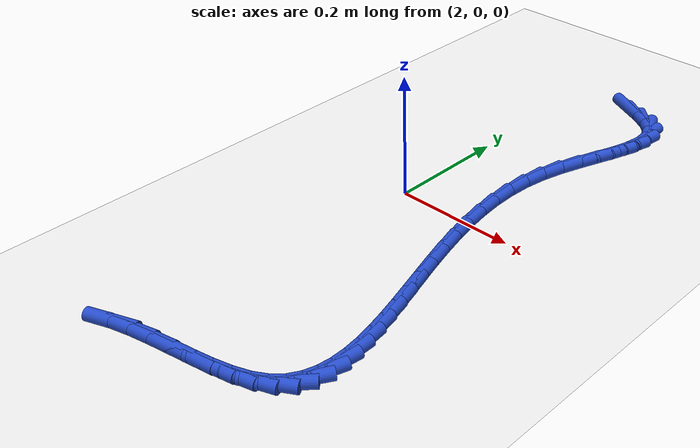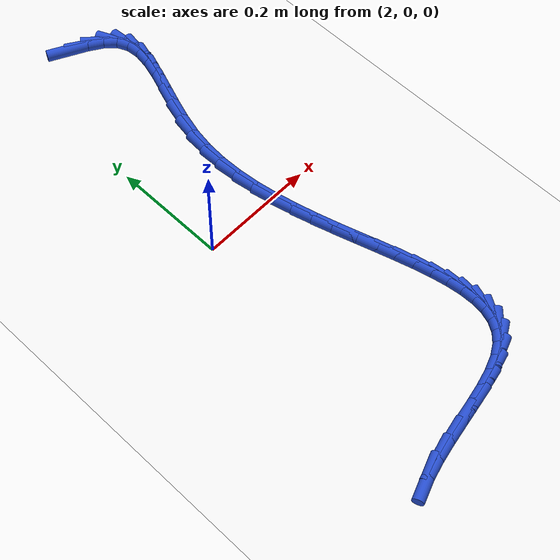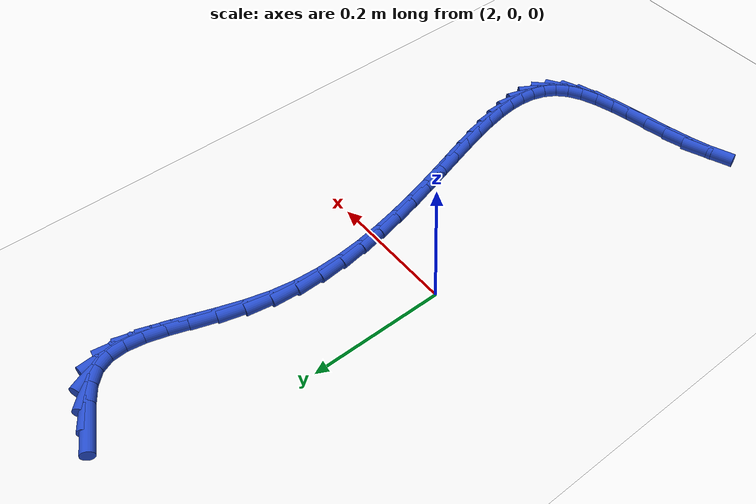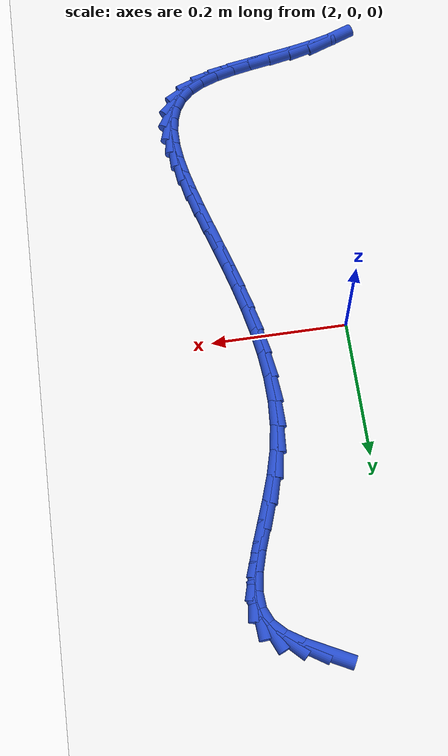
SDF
<sdf version="1.6">
 <world name="default">
  <model name="ground_plane">
   <static>1</static>
   <link name="link">
    <collision name="collision">
     <geometry><plane><normal>0 0 1</normal><size>100 100</size></plane></geometry>
     <surface><friction><ode><mu>100</mu><mu2>50</mu2></ode></friction></surface>
    </collision>
    <visual name="visual">
     <cast_shadows>0</cast_shadows>
     <geometry><plane><normal>0 0 1</normal><size>100 100</size></plane></geometry>
     <material>
      <script><uri>file://media/materials/scripts/gazebo.material</uri><name>Gazebo/WhiteGlow</name></script>
     </material>
    </visual>
   </link>
  </model>
  <model name="line">
   <link name="link_102">
    <pose>2.106183555907834 0.4582070805316041 0.01 0 1.57 -0.4669530309666636</pose>
    <collision name="collision">
     <geometry><cylinder><radius>0.01</radius><length>0.08</length></cylinder></geometry>
    </collision>
    <visual name="visual">
     <material>
      <script><name>Gazebo/Blue</name><uri>file://media/materials/scripts/gazebo.material</uri></script>
     </material>
     <geometry><cylinder><radius>0.01</radius><length>0.08</length></cylinder></geometry>
    </visual>
   </link>
   <link name="link_103">
    <pose>2.1343137559440404 0.4440255599535866 0.01 0 1.57 -0.5611002255166408</pose>
    <collision name="collision">
     <geometry><cylinder><radius>0.01</radius><length>0.08</length></cylinder></geometry>
    </collision>
    <visual name="visual">
     <material>
      <script><name>Gazebo/Blue</name><uri>file://media/materials/scripts/gazebo.material</uri></script>
     </material>
     <geometry><cylinder><radius>0.01</radius><length>0.08</length></cylinder></geometry>
    </visual>
   </link>
   <link name="link_104">
    <pose>2.1584522583065087 0.4288549148126478 0.01 0 1.57 -0.7783038114898712</pose>
    <collision name="collision">
     <geometry><cylinder><radius>0.01</radius><length>0.08</length></cylinder></geometry>
    </collision>
    <visual name="visual">
     <material>
      <script><name>Gazebo/Blue</name><uri>file://media/materials/scripts/gazebo.material</uri></script>
     </material>
     <geometry><cylinder><radius>0.01</radius><length>0.08</length></cylinder></geometry>
    </visual>
   </link>
   <link name="link_105">
    <pose>2.1761115406380784 0.411444433896928 0.01 0 1.57 -1.147872515482033</pose>
    <collision name="collision">
     <geometry><cylinder><radius>0.01</radius><length>0.08</length></cylinder></geometry>
    </collision>
    <visual name="visual">
     <material>
      <script><name>Gazebo/Blue</name><uri>file://media/materials/scripts/gazebo.material</uri></script>
     </material>
     <geometry><cylinder><radius>0.01</radius><length>0.08</length></cylinder></geometry>
    </visual>
   </link>
   <link name="link_106">
    <pose>2.185411272795665 0.3907822211989793 0.01 0 1.57 -1.4960700774505493</pose>
    <collision name="collision">
     <geometry><cylinder><radius>0.01</radius><length>0.08</length></cylinder></geometry>
    </collision>
    <visual name="visual">
     <material>
      <script><name>Gazebo/Blue</name><uri>file://media/materials/scripts/gazebo.material</uri></script>
     </material>
     <geometry><cylinder><radius>0.01</radius><length>0.08</length></cylinder></geometry>
    </visual>
   </link>
   <link name="link_107">
    <pose>2.187197094633995 0.36692853392273284 0.01 0 1.57 1.417688361436027</pose>
    <collision name="collision">
     <geometry><cylinder><radius>0.01</radius><length>0.08</length></cylinder></geometry>
    </collision>
    <visual name="visual">
     <material>
      <script><name>Gazebo/Blue</name><uri>file://media/materials/scripts/gazebo.material</uri></script>
     </material>
     <geometry><cylinder><radius>0.01</radius><length>0.08</length></cylinder></geometry>
    </visual>
   </link>
   <link name="link_108">
    <pose>2.1830793113484552 0.3402443803446834 0.01 0 1.57 1.2899157537128405</pose>
    <collision name="collision">
     <geometry><cylinder><radius>0.01</radius><length>0.08</length></cylinder></geometry>
    </collision>
    <visual name="visual">
     <material>
      <script><name>Gazebo/Blue</name><uri>file://media/materials/scripts/gazebo.material</uri></script>
     </material>
     <geometry><cylinder><radius>0.01</radius><length>0.08</length></cylinder></geometry>
    </visual>
   </link>
   <link name="link_109">
    <pose>2.174668266948988 0.31109078400750817 0.01 0 1.57 1.229789297097263</pose>
    <collision name="collision">
     <geometry><cylinder><radius>0.01</radius><length>0.08</length></cylinder></geometry>
    </collision>
    <visual name="visual">
     <material>
      <script><name>Gazebo/Blue</name><uri>file://media/materials/scripts/gazebo.material</uri></script>
     </material>
     <geometry><cylinder><radius>0.01</radius><length>0.08</length></cylinder></geometry>
    </visual>
   </link>
   <link name="link_110">
    <pose>2.1635743054455356 0.27982876845388327 0.01 0 1.57 1.2176679737667722</pose>
    <collision name="collision">
     <geometry><cylinder><radius>0.01</radius><length>0.08</length></cylinder></geometry>
    </collision>
    <visual name="visual">
     <material>
      <script><name>Gazebo/Blue</name><uri>file://media/materials/scripts/gazebo.material</uri></script>
     </material>
     <geometry><cylinder><radius>0.01</radius><length>0.08</length></cylinder></geometry>
    </visual>
   </link>
   <link name="link_111">
    <pose>2.151407770848044 0.24681935722648532 0.01 0 1.57 1.244773683000911</pose>
    <collision name="collision">
     <geometry><cylinder><radius>0.01</radius><length>0.08</length></cylinder></geometry>
    </collision>
    <visual name="visual">
     <material>
      <script><name>Gazebo/Blue</name><uri>file://media/materials/scripts/gazebo.material</uri></script>
     </material>
     <geometry><cylinder><radius>0.01</radius><length>0.08</length></cylinder></geometry>
    </visual>
   </link>
   <link name="link_112">
    <pose>2.1397790071664544 0.21242357386799027 0.01 0 1.57 1.3092712946984872</pose>
    <collision name="collision">
     <geometry><cylinder><radius>0.01</radius><length>0.08</length></cylinder></geometry>
    </collision>
    <visual name="visual">
     <material>
      <script><name>Gazebo/Blue</name><uri>file://media/materials/scripts/gazebo.material</uri></script>
     </material>
     <geometry><cylinder><radius>0.01</radius><length>0.08</length></cylinder></geometry>
    </visual>
   </link>
   <link name="link_113">
    <pose>2.1302983584107107 0.17700244192107562 0.01 0 1.57 1.4084223096730197</pose>
    <collision name="collision">
     <geometry><cylinder><radius>0.01</radius><length>0.08</length></cylinder></geometry>
    </collision>
    <visual name="visual">
     <material>
      <script><name>Gazebo/Blue</name><uri>file://media/materials/scripts/gazebo.material</uri></script>
     </material>
     <geometry><cylinder><radius>0.01</radius><length>0.08</length></cylinder></geometry>
    </visual>
   </link>
   <link name="link_114">
    <pose>2.1243841550984737 0.1408997747354225 0.01 0 1.57 1.5092782087624113</pose>
    <collision name="collision">
     <geometry><cylinder><radius>0.01</radius><length>0.08</length></cylinder></geometry>
    </collision>
    <visual name="visual">
     <material>
      <script><name>Gazebo/Blue</name><uri>file://media/materials/scripts/gazebo.material</uri></script>
     </material>
     <geometry><cylinder><radius>0.01</radius><length>0.08</length></cylinder></geometry>
    </visual>
   </link>
   <link name="link_115">
    <pose>2.122132277671355 0.10434085429729431 0.01 0 1.57 -1.5450305360038443</pose>
    <collision name="collision">
     <geometry><cylinder><radius>0.01</radius><length>0.08</length></cylinder></geometry>
    </collision>
    <visual name="visual">
     <material>
      <script><name>Gazebo/Blue</name><uri>file://media/materials/scripts/gazebo.material</uri></script>
     </material>
     <geometry><cylinder><radius>0.01</radius><length>0.08</length></cylinder></geometry>
    </visual>
   </link>
   <link name="link_116">
    <pose>2.1230816945594784 0.06750104650068083 0.01 0 1.57 -1.4713103226818578</pose>
    <collision name="collision">
     <geometry><cylinder><radius>0.01</radius><length>0.08</length></cylinder></geometry>
    </collision>
    <visual name="visual">
     <material>
      <script><name>Gazebo/Blue</name><uri>file://media/materials/scripts/gazebo.material</uri></script>
     </material>
     <geometry><cylinder><radius>0.01</radius><length>0.08</length></cylinder></geometry>
    </visual>
   </link>
   <link name="link_117">
    <pose>2.126769429523425 0.030555542938599134 0.01 0 1.57 -1.4104779575911432</pose>
    <collision name="collision">
     <geometry><cylinder><radius>0.01</radius><length>0.08</length></cylinder></geometry>
    </collision>
    <visual name="visual">
     <material>
      <script><name>Gazebo/Blue</name><uri>file://media/materials/scripts/gazebo.material</uri></script>
     </material>
     <geometry><cylinder><radius>0.01</radius><length>0.08</length></cylinder></geometry>
    </visual>
   </link>
   <link name="link_118">
    <pose>2.1327325063237716 -0.00632046479593329 0.01 0 1.57 -1.3616385291779645</pose>
    <collision name="collision">
     <geometry><cylinder><radius>0.01</radius><length>0.08</length></cylinder></geometry>
    </collision>
    <visual name="visual">
     <material>
      <script><name>Gazebo/Blue</name><uri>file://media/materials/scripts/gazebo.material</uri></script>
     </material>
     <geometry><cylinder><radius>0.01</radius><length>0.08</length></cylinder></geometry>
    </visual>
   </link>
   <link name="link_119">
    <pose>2.140507948721097 -0.04295178510989953 0.01 0 1.57 -1.323947921071971</pose>
    <collision name="collision">
     <geometry><cylinder><radius>0.01</radius><length>0.08</length></cylinder></geometry>
    </collision>
    <visual name="visual">
     <material>
      <script><name>Gazebo/Blue</name><uri>file://media/materials/scripts/gazebo.material</uri></script>
     </material>
     <geometry><cylinder><radius>0.01</radius><length>0.08</length></cylinder></geometry>
    </visual>
   </link>
   <link name="link_120">
    <pose>2.1496327804759794 -0.07916322641028108 0.01 0 1.57 -1.2967813366317928</pose>
    <collision name="collision">
     <geometry><cylinder><radius>0.01</radius><length>0.08</length></cylinder></geometry>
    </collision>
    <visual name="visual">
     <material>
      <script><name>Gazebo/Blue</name><uri>file://media/materials/scripts/gazebo.material</uri></script>
     </material>
     <geometry><cylinder><radius>0.01</radius><length>0.08</length></cylinder></geometry>
    </visual>
   </link>
   <link name="link_121">
    <pose>2.159644025348998 -0.11477959710406098 0.01 0 1.57 -1.27984381228828</pose>
    <collision name="collision">
     <geometry><cylinder><radius>0.01</radius><length>0.08</length></cylinder></geometry>
    </collision>
    <visual name="visual">
     <material>
      <script><name>Gazebo/Blue</name><uri>file://media/materials/scripts/gazebo.material</uri></script>
     </material>
     <geometry><cylinder><radius>0.01</radius><length>0.08</length></cylinder></geometry>
    </visual>
   </link>
   <link name="link_122">
    <pose>2.1700787071007293 -0.14962570559822172 0.01 0 1.57 -1.2732631387775561</pose>
    <collision name="collision">
     <geometry><cylinder><radius>0.01</radius><length>0.08</length></cylinder></geometry>
    </collision>
    <visual name="visual">
     <material>
      <script><name>Gazebo/Blue</name><uri>file://media/materials/scripts/gazebo.material</uri></script>
     </material>
     <geometry><cylinder><radius>0.01</radius><length>0.08</length></cylinder></geometry>
    </visual>
   </link>
   <link name="link_123">
    <pose>2.1804738494917526 -0.18352636029974578 0.01 0 1.57 -1.2776996006871055</pose>
    <collision name="collision">
     <geometry><cylinder><radius>0.01</radius><length>0.08</length></cylinder></geometry>
    </collision>
    <visual name="visual">
     <material>
      <script><name>Gazebo/Blue</name><uri>file://media/materials/scripts/gazebo.material</uri></script>
     </material>
     <geometry><cylinder><radius>0.01</radius><length>0.08</length></cylinder></geometry>
    </visual>
   </link>
   <link name="link_124">
    <pose>2.190366476282647 -0.21630636961561583 0.01 0 1.57 -1.2945046949539025</pose>
    <collision name="collision">
     <geometry><cylinder><radius>0.01</radius><length>0.08</length></cylinder></geometry>
    </collision>
    <visual name="visual">
     <material>
      <script><name>Gazebo/Blue</name><uri>file://media/materials/scripts/gazebo.material</uri></script>
     </material>
     <geometry><cylinder><radius>0.01</radius><length>0.08</length></cylinder></geometry>
    </visual>
   </link>
   <link name="link_125">
    <pose>2.1992936112339887 -0.247790541952815 0.01 0 1.57 -1.325962517419533</pose>
    <collision name="collision">
     <geometry><cylinder><radius>0.01</radius><length>0.08</length></cylinder></geometry>
    </collision>
    <visual name="visual">
     <material>
      <script><name>Gazebo/Blue</name><uri>file://media/materials/scripts/gazebo.material</uri></script>
     </material>
     <geometry><cylinder><radius>0.01</radius><length>0.08</length></cylinder></geometry>
    </visual>
   </link>
   <link name="link_126">
    <pose>2.206792278106358 -0.2778036857183243 0.01 0 1.57 -1.3756444331565651</pose>
    <collision name="collision">
     <geometry><cylinder><radius>0.01</radius><length>0.08</length></cylinder></geometry>
    </collision>
    <visual name="visual">
     <material>
      <script><name>Gazebo/Blue</name><uri>file://media/materials/scripts/gazebo.material</uri></script>
     </material>
     <geometry><cylinder><radius>0.01</radius><length>0.08</length></cylinder></geometry>
    </visual>
   </link>
   <link name="link_127">
    <pose>2.212399500660332 -0.30617060931912704 0.01 0 1.57 -1.4488673705385697</pose>
    <collision name="collision">
     <geometry><cylinder><radius>0.01</radius><length>0.08</length></cylinder></geometry>
    </collision>
    <visual name="visual">
     <material>
      <script><name>Gazebo/Blue</name><uri>file://media/materials/scripts/gazebo.material</uri></script>
     </material>
     <geometry><cylinder><radius>0.01</radius><length>0.08</length></cylinder></geometry>
    </visual>
   </link>
   <link name="link_128">
    <pose>2.21565230265649 -0.3327161211622059 0.01 0 1.57 -1.553061951682073</pose>
    <collision name="collision">
     <geometry><cylinder><radius>0.01</radius><length>0.08</length></cylinder></geometry>
    </collision>
    <visual name="visual">
     <material>
      <script><name>Gazebo/Blue</name><uri>file://media/materials/scripts/gazebo.material</uri></script>
     </material>
     <geometry><cylinder><radius>0.01</radius><length>0.08</length></cylinder></geometry>
    </visual>
   </link>
   <link name="link_129">
    <pose>2.216087707855409 -0.3572650296545431 0.01 0 1.57 1.4443373806300208</pose>
    <collision name="collision">
     <geometry><cylinder><radius>0.01</radius><length>0.08</length></cylinder></geometry>
    </collision>
    <visual name="visual">
     <material>
      <script><name>Gazebo/Blue</name><uri>file://media/materials/scripts/gazebo.material</uri></script>
     </material>
     <geometry><cylinder><radius>0.01</radius><length>0.08</length></cylinder></geometry>
    </visual>
   </link>
   <link name="link_130">
    <pose>2.2132427400176686 -0.37964214320312145 0.01 0 1.57 1.2530226687641755</pose>
    <collision name="collision">
     <geometry><cylinder><radius>0.01</radius><length>0.08</length></cylinder></geometry>
    </collision>
    <visual name="visual">
     <material>
      <script><name>Gazebo/Blue</name><uri>file://media/materials/scripts/gazebo.material</uri></script>
     </material>
     <geometry><cylinder><radius>0.01</radius><length>0.08</length></cylinder></geometry>
    </visual>
   </link>
   <link name="link_131">
    <pose>2.2066544229038465 -0.39967227021492335 0.01 0 1.57 1.0182916734289629</pose>
    <collision name="collision">
     <geometry><cylinder><radius>0.01</radius><length>0.08</length></cylinder></geometry>
    </collision>
    <visual name="visual">
     <material>
      <script><name>Gazebo/Blue</name><uri>file://media/materials/scripts/gazebo.material</uri></script>
     </material>
     <geometry><cylinder><radius>0.01</radius><length>0.08</length></cylinder></geometry>
    </visual>
   </link>
   <link name="link_132">
    <pose>2.1958597802745206 -0.4171802190969317 0.01 0 1.57 0.7638201584969122</pose>
    <collision name="collision">
     <geometry><cylinder><radius>0.01</radius><length>0.08</length></cylinder></geometry>
    </collision>
    <visual name="visual">
     <material>
      <script><name>Gazebo/Blue</name><uri>file://media/materials/scripts/gazebo.material</uri></script>
     </material>
     <geometry><cylinder><radius>0.01</radius><length>0.08</length></cylinder></geometry>
    </visual>
   </link>
   <link name="link_133">
    <pose>2.1803958358902693 -0.4319907982561281 0.01 0 1.57 0.5269695766670008</pose>
    <collision name="collision">
     <geometry><cylinder><radius>0.01</radius><length>0.08</length></cylinder></geometry>
    </collision>
    <visual name="visual">
     <material>
      <script><name>Gazebo/Blue</name><uri>file://media/materials/scripts/gazebo.material</uri></script>
     </material>
     <geometry><cylinder><radius>0.01</radius><length>0.08</length></cylinder></geometry>
    </visual>
   </link>
   <link name="link_134">
    <pose>2.159839746204824 -0.44395142998815185 0.01 0 1.57 0.3555482759608363</pose>
    <collision name="collision">
     <geometry><cylinder><radius>0.01</radius><length>0.08</length></cylinder></geometry>
    </collision>
    <visual name="visual">
     <material>
      <script><name>Gazebo/Blue</name><uri>file://media/materials/scripts/gazebo.material</uri></script>
     </material>
     <geometry><cylinder><radius>0.01</radius><length>0.08</length></cylinder></geometry>
    </visual>
   </link>
   <link name="link_135">
    <pose>2.134541915949696 -0.45334524496213885 0.01 0 1.57 0.2532654071504002</pose>
    <collision name="collision">
     <geometry><cylinder><radius>0.01</radius><length>0.08</length></cylinder></geometry>
    </collision>
    <visual name="visual">
     <material>
      <script><name>Gazebo/Blue</name><uri>file://media/materials/scripts/gazebo.material</uri></script>
     </material>
     <geometry><cylinder><radius>0.01</radius><length>0.08</length></cylinder></geometry>
    </visual>
   </link>
   <link name="link_136">
    <pose>2.1055509302174324 -0.4608487831030289 0.01 0 1.57 0.19684281003989243</pose>
    <collision name="collision">
     <geometry><cylinder><radius>0.01</radius><length>0.08</length></cylinder></geometry>
    </collision>
    <visual name="visual">
     <material>
      <script><name>Gazebo/Blue</name><uri>file://media/materials/scripts/gazebo.material</uri></script>
     </material>
     <geometry><cylinder><radius>0.01</radius><length>0.08</length></cylinder></geometry>
    </visual>
   </link>
   <link name="link_137">
    <pose>2.073940444109501 -0.4671527107336149 0.01 0 1.57 0.17302984992279563</pose>
    <collision name="collision">
     <geometry><cylinder><radius>0.01</radius><length>0.08</length></cylinder></geometry>
    </collision>
    <visual name="visual">
     <material>
      <script><name>Gazebo/Blue</name><uri>file://media/materials/scripts/gazebo.material</uri></script>
     </material>
     <geometry><cylinder><radius>0.01</radius><length>0.08</length></cylinder></geometry>
    </visual>
   </link>
   <link name="link_138">
    <pose>2.040784112727369 -0.47294769417668864 0.01 0 1.57 0.17589067179537735</pose>
    <collision name="collision">
     <geometry><cylinder><radius>0.01</radius><length>0.08</length></cylinder></geometry>
    </collision>
    <visual name="visual">
     <material>
      <script><name>Gazebo/Blue</name><uri>file://media/materials/scripts/gazebo.material</uri></script>
     </material>
     <geometry><cylinder><radius>0.01</radius><length>0.08</length></cylinder></geometry>
    </visual>
   </link>
   <link name="link_139">
    <pose>2.0071555911725047 -0.4789243997550426 0.01 0 1.57 0.20447988455947103</pose>
    <collision name="collision">
     <geometry><cylinder><radius>0.01</radius><length>0.08</length></cylinder></geometry>
    </collision>
    <visual name="visual">
     <material>
      <script><name>Gazebo/Blue</name><uri>file://media/materials/scripts/gazebo.material</uri></script>
     </material>
     <geometry><cylinder><radius>0.01</radius><length>0.08</length></cylinder></geometry>
    </visual>
   </link>
   <link name="link_140">
    <pose>1.9741285345463753 -0.48577349379146917 0.01 0 1.57 0.2621392895039231</pose>
    <collision name="collision">
     <geometry><cylinder><radius>0.01</radius><length>0.08</length></cylinder></geometry>
    </collision>
    <visual name="visual">
     <material>
      <script><name>Gazebo/Blue</name><uri>file://media/materials/scripts/gazebo.material</uri></script>
     </material>
     <geometry><cylinder><radius>0.01</radius><length>0.08</length></cylinder></geometry>
    </visual>
   </link>
   <link name="link_141">
    <pose>1.9427765979504483 -0.4941856426087601 0.01 0 1.57 0.3569206621924155</pose>
    <collision name="collision">
     <geometry><cylinder><radius>0.01</radius><length>0.08</length></cylinder></geometry>
    </collision>
    <visual name="visual">
     <material>
      <script><name>Gazebo/Blue</name><uri>file://media/materials/scripts/gazebo.material</uri></script>
     </material>
     <geometry><cylinder><radius>0.01</radius><length>0.08</length></cylinder></geometry>
    </visual>
   </link>
  </model>
 </world>
</sdf>
